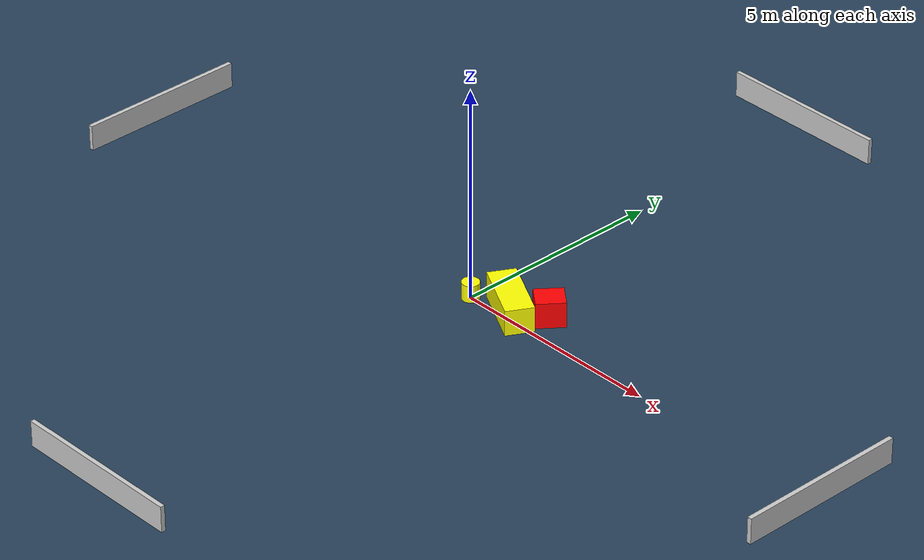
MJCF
<?xml version="1.0" ?>
<mujoco model="generated_environment">
  <option timestep="0.01" integrator="RK4" cone="elliptic"/>
  <default>
    <geom density="1"/>
  </default>
  <asset>
    <texture builtin="gradient" height="3072" name="skybox" rgb1="0.3 0.5 0.7" rgb2="0 0 0" type="skybox" width="512"/>
    <texture builtin="checker" height="300" name="groundplane" rgb1="0.2 0.3 0.4" rgb2="0.1 0.2 0.3" type="2d" width="300"/>
    <material name="groundplane" reflectance="0.2" texrepeat="5 5" texture="groundplane"/>
  </asset>
  <worldbody>
    <light dir="0 0 -1" directional="true" pos="0 0 1.5"/>
    <geom condim="3" friction="0.5 0.005 0.001" material="groundplane" name="floor" pos="0 0 0" size="0 0 0.05" type="plane"/>
    <body name="walls">
      <geom name="wall_1" condim="4" pos="-10.0 0.0 0.3" rgba="0.800000011920929 0.800000011920929 0.800000011920929 1.0" size="0.05 2.0 0.3" type="box"/>
      <geom name="wall_2" condim="4" pos="10.0 0.0 0.3" rgba="0.800000011920929 0.800000011920929 0.800000011920929 1.0" size="0.05 2.0 0.3" type="box"/>
      <geom name="wall_3" condim="4" pos="0.0 -10.0 0.3" rgba="0.800000011920929 0.800000011920929 0.800000011920929 1.0" size="2.0 0.05 0.3" type="box"/>
      <geom name="wall_4" condim="4" pos="0.0 10.0 0.3" rgba="0.800000011920929 0.800000011920929 0.800000011920929 1.0" size="2.0 0.05 0.3" type="box"/>
    </body>
    <body name="robot">
      <joint name="joint_x" type="slide" pos="0 0 0" axis="1 0 0"/>
      <joint name="joint_y" type="slide" pos="0 0 0" axis="0 1 0"/>
      <geom name="robot" type="cylinder" pos="0.0 0.0 0.2" size="0.2 0.2 0.0" mass="5.0" friction="1.0 0.005 0.0001" condim="4" rgba="1.0 1.0 0.0 1.0"/>
    </body>
    <body name="obstacle_1_movable">
      <geom name="obstacle_1_movable" condim="4" pos="1.0126879800961484 0.18314016933964927 0.3" euler="0 0 60.999289996081" friction="0.0 0.005 0.001" rgba="1.0 1.0 0.0 1.0" size="0.32180639026754565 0.7691635284262455 0.3" type="box" mass="0.1"/>
      <joint type="free"/>
    </body>
    <body name="obstacle_2_static">
      <geom name="obstacle_2_static" condim="4" pos="1.7346170016989777 0.6100798875094485 0.3" euler="0 0 321.63269157344894" friction="0.0 0.005 0.001" rgba="1.0 0.0 0.0 1.0" size="0.2927263933187653 0.32551365603594884 0.3" type="box"/>
    </body>
  </worldbody>
  <actuator>
    <motor name="actuator_x" joint="joint_x" gear="1" ctrlrange="-1 1"/>
    <motor name="actuator_y" joint="joint_y" gear="1" ctrlrange="-1 1"/>
  </actuator>
</mujoco>
